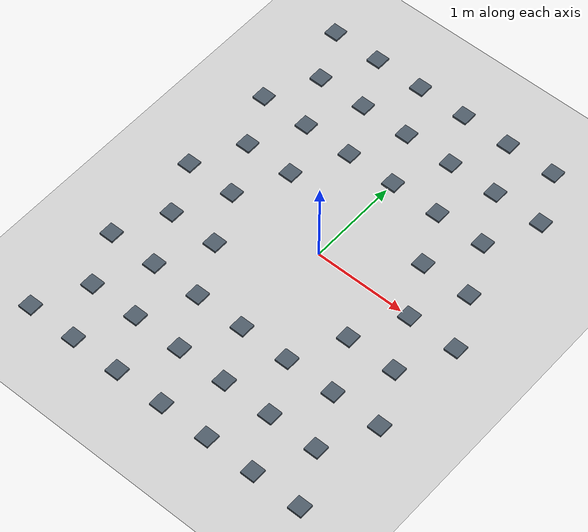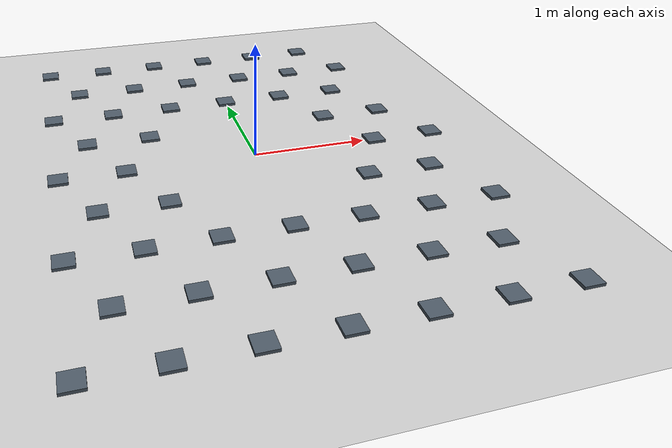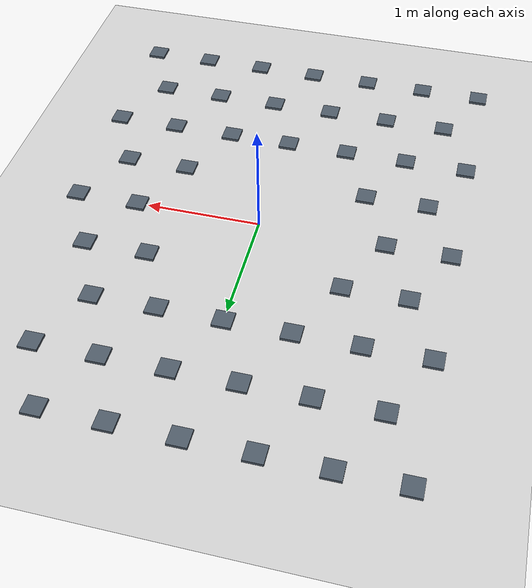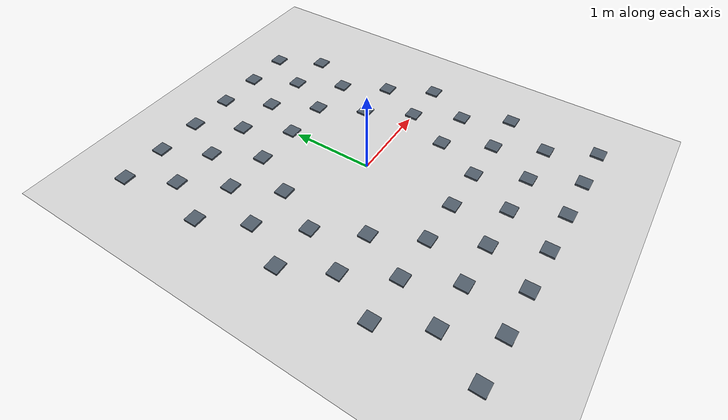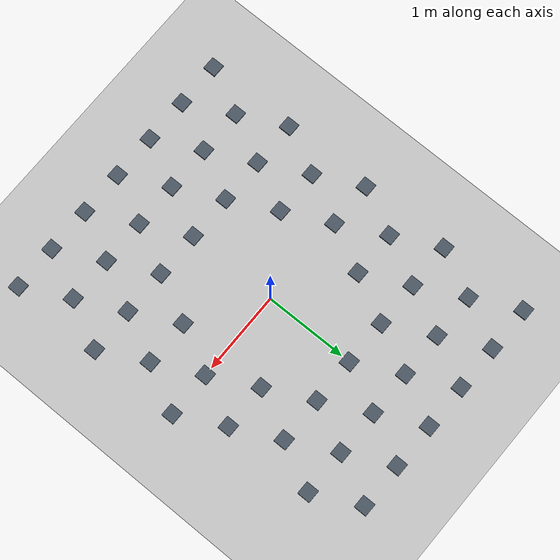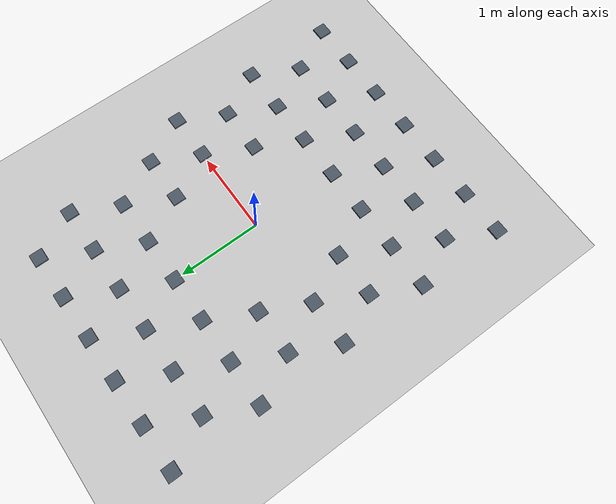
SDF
<sdf version="1.9">
 <world name="empty_ground">
  <model name="ground_plane">
   <static>true</static>
   <link name="link">
    <collision name="collision">
     <geometry><plane><normal>0 0 1</normal><size>100 100</size></plane></geometry>
     <surface>
      <friction>
       <ode><mu>1.5</mu><mu2>1.5</mu2></ode>
       <torsional><coefficient>0.0</coefficient></torsional>
      </friction>
     </surface>
    </collision>
    <visual name="visual">
     <geometry><plane><normal>0 0 1</normal><size>100 100</size></plane></geometry>
     <material><ambient>0.8 0.8 0.8 1</ambient><diffuse>0.8 0.8 0.8 1</diffuse></material>
    </visual>
   </link>
  </model>
  <model name="bump_1">
   <static>true</static>
   <pose>-1.650 -2.200 0.012 0 0 0</pose>
   <link name="link">
    <collision name="collision">
     <geometry><box><size>0.16 0.16 0.024</size></box></geometry>
     <surface>
      <friction>
       <ode><mu>1.5</mu><mu2>1.5</mu2></ode>
       <torsional><coefficient>0.0</coefficient></torsional>
      </friction>
     </surface>
    </collision>
    <visual name="visual">
     <geometry><box><size>0.16 0.16 0.024</size></box></geometry>
     <material><ambient>0.25 0.3 0.35 1</ambient><diffuse>0.30 0.35 0.4 1</diffuse></material>
    </visual>
   </link>
  </model>
  <model name="bump_2">
   <static>true</static>
   <pose>-1.380 -1.650 0.012 0 0 0</pose>
   <link name="link">
    <collision name="collision">
     <geometry><box><size>0.16 0.16 0.024</size></box></geometry>
     <surface>
      <friction>
       <ode><mu>1.5</mu><mu2>1.5</mu2></ode>
       <torsional><coefficient>0.0</coefficient></torsional>
      </friction>
     </surface>
    </collision>
    <visual name="visual">
     <geometry><box><size>0.16 0.16 0.024</size></box></geometry>
     <material><ambient>0.25 0.3 0.35 1</ambient><diffuse>0.30 0.35 0.4 1</diffuse></material>
    </visual>
   </link>
  </model>
  <model name="bump_3">
   <static>true</static>
   <pose>-1.650 -1.100 0.012 0 0 0</pose>
   <link name="link">
    <collision name="collision">
     <geometry><box><size>0.16 0.16 0.024</size></box></geometry>
     <surface>
      <friction>
       <ode><mu>1.5</mu><mu2>1.5</mu2></ode>
       <torsional><coefficient>0.0</coefficient></torsional>
      </friction>
     </surface>
    </collision>
    <visual name="visual">
     <geometry><box><size>0.16 0.16 0.024</size></box></geometry>
     <material><ambient>0.25 0.3 0.35 1</ambient><diffuse>0.30 0.35 0.4 1</diffuse></material>
    </visual>
   </link>
  </model>
  <model name="bump_4">
   <static>true</static>
   <pose>-1.380 -0.550 0.012 0 0 0</pose>
   <link name="link">
    <collision name="collision">
     <geometry><box><size>0.16 0.16 0.024</size></box></geometry>
     <surface>
      <friction>
       <ode><mu>1.5</mu><mu2>1.5</mu2></ode>
       <torsional><coefficient>0.0</coefficient></torsional>
      </friction>
     </surface>
    </collision>
    <visual name="visual">
     <geometry><box><size>0.16 0.16 0.024</size></box></geometry>
     <material><ambient>0.25 0.3 0.35 1</ambient><diffuse>0.30 0.35 0.4 1</diffuse></material>
    </visual>
   </link>
  </model>
  <model name="bump_5">
   <static>true</static>
   <pose>-1.650 0.000 0.012 0 0 0</pose>
   <link name="link">
    <collision name="collision">
     <geometry><box><size>0.16 0.16 0.024</size></box></geometry>
     <surface>
      <friction>
       <ode><mu>1.5</mu><mu2>1.5</mu2></ode>
       <torsional><coefficient>0.0</coefficient></torsional>
      </friction>
     </surface>
    </collision>
    <visual name="visual">
     <geometry><box><size>0.16 0.16 0.024</size></box></geometry>
     <material><ambient>0.25 0.3 0.35 1</ambient><diffuse>0.30 0.35 0.4 1</diffuse></material>
    </visual>
   </link>
  </model>
  <model name="bump_6">
   <static>true</static>
   <pose>-1.380 0.550 0.012 0 0 0</pose>
   <link name="link">
    <collision name="collision">
     <geometry><box><size>0.16 0.16 0.024</size></box></geometry>
     <surface>
      <friction>
       <ode><mu>1.5</mu><mu2>1.5</mu2></ode>
       <torsional><coefficient>0.0</coefficient></torsional>
      </friction>
     </surface>
    </collision>
    <visual name="visual">
     <geometry><box><size>0.16 0.16 0.024</size></box></geometry>
     <material><ambient>0.25 0.3 0.35 1</ambient><diffuse>0.30 0.35 0.4 1</diffuse></material>
    </visual>
   </link>
  </model>
  <model name="bump_7">
   <static>true</static>
   <pose>-1.650 1.100 0.012 0 0 0</pose>
   <link name="link">
    <collision name="collision">
     <geometry><box><size>0.16 0.16 0.024</size></box></geometry>
     <surface>
      <friction>
       <ode><mu>1.5</mu><mu2>1.5</mu2></ode>
       <torsional><coefficient>0.0</coefficient></torsional>
      </friction>
     </surface>
    </collision>
    <visual name="visual">
     <geometry><box><size>0.16 0.16 0.024</size></box></geometry>
     <material><ambient>0.25 0.3 0.35 1</ambient><diffuse>0.30 0.35 0.4 1</diffuse></material>
    </visual>
   </link>
  </model>
  <model name="bump_8">
   <static>true</static>
   <pose>-1.380 1.650 0.012 0 0 0</pose>
   <link name="link">
    <collision name="collision">
     <geometry><box><size>0.16 0.16 0.024</size></box></geometry>
     <surface>
      <friction>
       <ode><mu>1.5</mu><mu2>1.5</mu2></ode>
       <torsional><coefficient>0.0</coefficient></torsional>
      </friction>
     </surface>
    </collision>
    <visual name="visual">
     <geometry><box><size>0.16 0.16 0.024</size></box></geometry>
     <material><ambient>0.25 0.3 0.35 1</ambient><diffuse>0.30 0.35 0.4 1</diffuse></material>
    </visual>
   </link>
  </model>
  <model name="bump_9">
   <static>true</static>
   <pose>-1.650 2.200 0.012 0 0 0</pose>
   <link name="link">
    <collision name="collision">
     <geometry><box><size>0.16 0.16 0.024</size></box></geometry>
     <surface>
      <friction>
       <ode><mu>1.5</mu><mu2>1.5</mu2></ode>
       <torsional><coefficient>0.0</coefficient></torsional>
      </friction>
     </surface>
    </collision>
    <visual name="visual">
     <geometry><box><size>0.16 0.16 0.024</size></box></geometry>
     <material><ambient>0.25 0.3 0.35 1</ambient><diffuse>0.30 0.35 0.4 1</diffuse></material>
    </visual>
   </link>
  </model>
  <model name="bump_10">
   <static>true</static>
   <pose>-1.100 -2.200 0.012 0 0 0</pose>
   <link name="link">
    <collision name="collision">
     <geometry><box><size>0.16 0.16 0.024</size></box></geometry>
     <surface>
      <friction>
       <ode><mu>1.5</mu><mu2>1.5</mu2></ode>
       <torsional><coefficient>0.0</coefficient></torsional>
      </friction>
     </surface>
    </collision>
    <visual name="visual">
     <geometry><box><size>0.16 0.16 0.024</size></box></geometry>
     <material><ambient>0.25 0.3 0.35 1</ambient><diffuse>0.30 0.35 0.4 1</diffuse></material>
    </visual>
   </link>
  </model>
  <model name="bump_11">
   <static>true</static>
   <pose>-0.830 -1.650 0.012 0 0 0</pose>
   <link name="link">
    <collision name="collision">
     <geometry><box><size>0.16 0.16 0.024</size></box></geometry>
     <surface>
      <friction>
       <ode><mu>1.5</mu><mu2>1.5</mu2></ode>
       <torsional><coefficient>0.0</coefficient></torsional>
      </friction>
     </surface>
    </collision>
    <visual name="visual">
     <geometry><box><size>0.16 0.16 0.024</size></box></geometry>
     <material><ambient>0.25 0.3 0.35 1</ambient><diffuse>0.30 0.35 0.4 1</diffuse></material>
    </visual>
   </link>
  </model>
  <model name="bump_12">
   <static>true</static>
   <pose>-1.100 -1.100 0.012 0 0 0</pose>
   <link name="link">
    <collision name="collision">
     <geometry><box><size>0.16 0.16 0.024</size></box></geometry>
     <surface>
      <friction>
       <ode><mu>1.5</mu><mu2>1.5</mu2></ode>
       <torsional><coefficient>0.0</coefficient></torsional>
      </friction>
     </surface>
    </collision>
    <visual name="visual">
     <geometry><box><size>0.16 0.16 0.024</size></box></geometry>
     <material><ambient>0.25 0.3 0.35 1</ambient><diffuse>0.30 0.35 0.4 1</diffuse></material>
    </visual>
   </link>
  </model>
  <model name="bump_13">
   <static>true</static>
   <pose>-0.830 -0.550 0.012 0 0 0</pose>
   <link name="link">
    <collision name="collision">
     <geometry><box><size>0.16 0.16 0.024</size></box></geometry>
     <surface>
      <friction>
       <ode><mu>1.5</mu><mu2>1.5</mu2></ode>
       <torsional><coefficient>0.0</coefficient></torsional>
      </friction>
     </surface>
    </collision>
    <visual name="visual">
     <geometry><box><size>0.16 0.16 0.024</size></box></geometry>
     <material><ambient>0.25 0.3 0.35 1</ambient><diffuse>0.30 0.35 0.4 1</diffuse></material>
    </visual>
   </link>
  </model>
  <model name="bump_14">
   <static>true</static>
   <pose>-1.100 0.000 0.012 0 0 0</pose>
   <link name="link">
    <collision name="collision">
     <geometry><box><size>0.16 0.16 0.024</size></box></geometry>
     <surface>
      <friction>
       <ode><mu>1.5</mu><mu2>1.5</mu2></ode>
       <torsional><coefficient>0.0</coefficient></torsional>
      </friction>
     </surface>
    </collision>
    <visual name="visual">
     <geometry><box><size>0.16 0.16 0.024</size></box></geometry>
     <material><ambient>0.25 0.3 0.35 1</ambient><diffuse>0.30 0.35 0.4 1</diffuse></material>
    </visual>
   </link>
  </model>
  <model name="bump_15">
   <static>true</static>
   <pose>-0.830 0.550 0.012 0 0 0</pose>
   <link name="link">
    <collision name="collision">
     <geometry><box><size>0.16 0.16 0.024</size></box></geometry>
     <surface>
      <friction>
       <ode><mu>1.5</mu><mu2>1.5</mu2></ode>
       <torsional><coefficient>0.0</coefficient></torsional>
      </friction>
     </surface>
    </collision>
    <visual name="visual">
     <geometry><box><size>0.16 0.16 0.024</size></box></geometry>
     <material><ambient>0.25 0.3 0.35 1</ambient><diffuse>0.30 0.35 0.4 1</diffuse></material>
    </visual>
   </link>
  </model>
  <model name="bump_16">
   <static>true</static>
   <pose>-1.100 1.100 0.012 0 0 0</pose>
   <link name="link">
    <collision name="collision">
     <geometry><box><size>0.16 0.16 0.024</size></box></geometry>
     <surface>
      <friction>
       <ode><mu>1.5</mu><mu2>1.5</mu2></ode>
       <torsional><coefficient>0.0</coefficient></torsional>
      </friction>
     </surface>
    </collision>
    <visual name="visual">
     <geometry><box><size>0.16 0.16 0.024</size></box></geometry>
     <material><ambient>0.25 0.3 0.35 1</ambient><diffuse>0.30 0.35 0.4 1</diffuse></material>
    </visual>
   </link>
  </model>
  <model name="bump_17">
   <static>true</static>
   <pose>-0.830 1.650 0.012 0 0 0</pose>
   <link name="link">
    <collision name="collision">
     <geometry><box><size>0.16 0.16 0.024</size></box></geometry>
     <surface>
      <friction>
       <ode><mu>1.5</mu><mu2>1.5</mu2></ode>
       <torsional><coefficient>0.0</coefficient></torsional>
      </friction>
     </surface>
    </collision>
    <visual name="visual">
     <geometry><box><size>0.16 0.16 0.024</size></box></geometry>
     <material><ambient>0.25 0.3 0.35 1</ambient><diffuse>0.30 0.35 0.4 1</diffuse></material>
    </visual>
   </link>
  </model>
  <model name="bump_18">
   <static>true</static>
   <pose>-1.100 2.200 0.012 0 0 0</pose>
   <link name="link">
    <collision name="collision">
     <geometry><box><size>0.16 0.16 0.024</size></box></geometry>
     <surface>
      <friction>
       <ode><mu>1.5</mu><mu2>1.5</mu2></ode>
       <torsional><coefficient>0.0</coefficient></torsional>
      </friction>
     </surface>
    </collision>
    <visual name="visual">
     <geometry><box><size>0.16 0.16 0.024</size></box></geometry>
     <material><ambient>0.25 0.3 0.35 1</ambient><diffuse>0.30 0.35 0.4 1</diffuse></material>
    </visual>
   </link>
  </model>
  <model name="bump_19">
   <static>true</static>
   <pose>-0.550 -2.200 0.012 0 0 0</pose>
   <link name="link">
    <collision name="collision">
     <geometry><box><size>0.16 0.16 0.024</size></box></geometry>
     <surface>
      <friction>
       <ode><mu>1.5</mu><mu2>1.5</mu2></ode>
       <torsional><coefficient>0.0</coefficient></torsional>
      </friction>
     </surface>
    </collision>
    <visual name="visual">
     <geometry><box><size>0.16 0.16 0.024</size></box></geometry>
     <material><ambient>0.25 0.3 0.35 1</ambient><diffuse>0.30 0.35 0.4 1</diffuse></material>
    </visual>
   </link>
  </model>
  <model name="bump_20">
   <static>true</static>
   <pose>-0.280 -1.650 0.012 0 0 0</pose>
   <link name="link">
    <collision name="collision">
     <geometry><box><size>0.16 0.16 0.024</size></box></geometry>
     <surface>
      <friction>
       <ode><mu>1.5</mu><mu2>1.5</mu2></ode>
       <torsional><coefficient>0.0</coefficient></torsional>
      </friction>
     </surface>
    </collision>
    <visual name="visual">
     <geometry><box><size>0.16 0.16 0.024</size></box></geometry>
     <material><ambient>0.25 0.3 0.35 1</ambient><diffuse>0.30 0.35 0.4 1</diffuse></material>
    </visual>
   </link>
  </model>
  <model name="bump_21">
   <static>true</static>
   <pose>-0.550 -1.100 0.012 0 0 0</pose>
   <link name="link">
    <collision name="collision">
     <geometry><box><size>0.16 0.16 0.024</size></box></geometry>
     <surface>
      <friction>
       <ode><mu>1.5</mu><mu2>1.5</mu2></ode>
       <torsional><coefficient>0.0</coefficient></torsional>
      </friction>
     </surface>
    </collision>
    <visual name="visual">
     <geometry><box><size>0.16 0.16 0.024</size></box></geometry>
     <material><ambient>0.25 0.3 0.35 1</ambient><diffuse>0.30 0.35 0.4 1</diffuse></material>
    </visual>
   </link>
  </model>
  <model name="bump_22">
   <static>true</static>
   <pose>-0.550 1.100 0.012 0 0 0</pose>
   <link name="link">
    <collision name="collision">
     <geometry><box><size>0.16 0.16 0.024</size></box></geometry>
     <surface>
      <friction>
       <ode><mu>1.5</mu><mu2>1.5</mu2></ode>
       <torsional><coefficient>0.0</coefficient></torsional>
      </friction>
     </surface>
    </collision>
    <visual name="visual">
     <geometry><box><size>0.16 0.16 0.024</size></box></geometry>
     <material><ambient>0.25 0.3 0.35 1</ambient><diffuse>0.30 0.35 0.4 1</diffuse></material>
    </visual>
   </link>
  </model>
  <model name="bump_23">
   <static>true</static>
   <pose>-0.280 1.650 0.012 0 0 0</pose>
   <link name="link">
    <collision name="collision">
     <geometry><box><size>0.16 0.16 0.024</size></box></geometry>
     <surface>
      <friction>
       <ode><mu>1.5</mu><mu2>1.5</mu2></ode>
       <torsional><coefficient>0.0</coefficient></torsional>
      </friction>
     </surface>
    </collision>
    <visual name="visual">
     <geometry><box><size>0.16 0.16 0.024</size></box></geometry>
     <material><ambient>0.25 0.3 0.35 1</ambient><diffuse>0.30 0.35 0.4 1</diffuse></material>
    </visual>
   </link>
  </model>
  <model name="bump_24">
   <static>true</static>
   <pose>-0.550 2.200 0.012 0 0 0</pose>
   <link name="link">
    <collision name="collision">
     <geometry><box><size>0.16 0.16 0.024</size></box></geometry>
     <surface>
      <friction>
       <ode><mu>1.5</mu><mu2>1.5</mu2></ode>
       <torsional><coefficient>0.0</coefficient></torsional>
      </friction>
     </surface>
    </collision>
    <visual name="visual">
     <geometry><box><size>0.16 0.16 0.024</size></box></geometry>
     <material><ambient>0.25 0.3 0.35 1</ambient><diffuse>0.30 0.35 0.4 1</diffuse></material>
    </visual>
   </link>
  </model>
  <model name="bump_25">
   <static>true</static>
   <pose>0.000 -2.200 0.012 0 0 0</pose>
   <link name="link">
    <collision name="collision">
     <geometry><box><size>0.16 0.16 0.024</size></box></geometry>
     <surface>
      <friction>
       <ode><mu>1.5</mu><mu2>1.5</mu2></ode>
       <torsional><coefficient>0.0</coefficient></torsional>
      </friction>
     </surface>
    </collision>
    <visual name="visual">
     <geometry><box><size>0.16 0.16 0.024</size></box></geometry>
     <material><ambient>0.25 0.3 0.35 1</ambient><diffuse>0.30 0.35 0.4 1</diffuse></material>
    </visual>
   </link>
  </model>
  <model name="bump_26">
   <static>true</static>
   <pose>0.270 -1.650 0.012 0 0 0</pose>
   <link name="link">
    <collision name="collision">
     <geometry><box><size>0.16 0.16 0.024</size></box></geometry>
     <surface>
      <friction>
       <ode><mu>1.5</mu><mu2>1.5</mu2></ode>
       <torsional><coefficient>0.0</coefficient></torsional>
      </friction>
     </surface>
    </collision>
    <visual name="visual">
     <geometry><box><size>0.16 0.16 0.024</size></box></geometry>
     <material><ambient>0.25 0.3 0.35 1</ambient><diffuse>0.30 0.35 0.4 1</diffuse></material>
    </visual>
   </link>
  </model>
  <model name="bump_27">
   <static>true</static>
   <pose>0.000 -1.100 0.012 0 0 0</pose>
   <link name="link">
    <collision name="collision">
     <geometry><box><size>0.16 0.16 0.024</size></box></geometry>
     <surface>
      <friction>
       <ode><mu>1.5</mu><mu2>1.5</mu2></ode>
       <torsional><coefficient>0.0</coefficient></torsional>
      </friction>
     </surface>
    </collision>
    <visual name="visual">
     <geometry><box><size>0.16 0.16 0.024</size></box></geometry>
     <material><ambient>0.25 0.3 0.35 1</ambient><diffuse>0.30 0.35 0.4 1</diffuse></material>
    </visual>
   </link>
  </model>
  <model name="bump_28">
   <static>true</static>
   <pose>0.000 1.100 0.012 0 0 0</pose>
   <link name="link">
    <collision name="collision">
     <geometry><box><size>0.16 0.16 0.024</size></box></geometry>
     <surface>
      <friction>
       <ode><mu>1.5</mu><mu2>1.5</mu2></ode>
       <torsional><coefficient>0.0</coefficient></torsional>
      </friction>
     </surface>
    </collision>
    <visual name="visual">
     <geometry><box><size>0.16 0.16 0.024</size></box></geometry>
     <material><ambient>0.25 0.3 0.35 1</ambient><diffuse>0.30 0.35 0.4 1</diffuse></material>
    </visual>
   </link>
  </model>
  <model name="bump_29">
   <static>true</static>
   <pose>0.270 1.650 0.012 0 0 0</pose>
   <link name="link">
    <collision name="collision">
     <geometry><box><size>0.16 0.16 0.024</size></box></geometry>
     <surface>
      <friction>
       <ode><mu>1.5</mu><mu2>1.5</mu2></ode>
       <torsional><coefficient>0.0</coefficient></torsional>
      </friction>
     </surface>
    </collision>
    <visual name="visual">
     <geometry><box><size>0.16 0.16 0.024</size></box></geometry>
     <material><ambient>0.25 0.3 0.35 1</ambient><diffuse>0.30 0.35 0.4 1</diffuse></material>
    </visual>
   </link>
  </model>
  <model name="bump_30">
   <static>true</static>
   <pose>0.000 2.200 0.012 0 0 0</pose>
   <link name="link">
    <collision name="collision">
     <geometry><box><size>0.16 0.16 0.024</size></box></geometry>
     <surface>
      <friction>
       <ode><mu>1.5</mu><mu2>1.5</mu2></ode>
       <torsional><coefficient>0.0</coefficient></torsional>
      </friction>
     </surface>
    </collision>
    <visual name="visual">
     <geometry><box><size>0.16 0.16 0.024</size></box></geometry>
     <material><ambient>0.25 0.3 0.35 1</ambient><diffuse>0.30 0.35 0.4 1</diffuse></material>
    </visual>
   </link>
  </model>
  <model name="bump_31">
   <static>true</static>
   <pose>0.550 -2.200 0.012 0 0 0</pose>
   <link name="link">
    <collision name="collision">
     <geometry><box><size>0.16 0.16 0.024</size></box></geometry>
     <surface>
      <friction>
       <ode><mu>1.5</mu><mu2>1.5</mu2></ode>
       <torsional><coefficient>0.0</coefficient></torsional>
      </friction>
     </surface>
    </collision>
    <visual name="visual">
     <geometry><box><size>0.16 0.16 0.024</size></box></geometry>
     <material><ambient>0.25 0.3 0.35 1</ambient><diffuse>0.30 0.35 0.4 1</diffuse></material>
    </visual>
   </link>
  </model>
  <model name="bump_32">
   <static>true</static>
   <pose>0.820 -1.650 0.012 0 0 0</pose>
   <link name="link">
    <collision name="collision">
     <geometry><box><size>0.16 0.16 0.024</size></box></geometry>
     <surface>
      <friction>
       <ode><mu>1.5</mu><mu2>1.5</mu2></ode>
       <torsional><coefficient>0.0</coefficient></torsional>
      </friction>
     </surface>
    </collision>
    <visual name="visual">
     <geometry><box><size>0.16 0.16 0.024</size></box></geometry>
     <material><ambient>0.25 0.3 0.35 1</ambient><diffuse>0.30 0.35 0.4 1</diffuse></material>
    </visual>
   </link>
  </model>
  <model name="bump_33">
   <static>true</static>
   <pose>0.550 -1.100 0.012 0 0 0</pose>
   <link name="link">
    <collision name="collision">
     <geometry><box><size>0.16 0.16 0.024</size></box></geometry>
     <surface>
      <friction>
       <ode><mu>1.5</mu><mu2>1.5</mu2></ode>
       <torsional><coefficient>0.0</coefficient></torsional>
      </friction>
     </surface>
    </collision>
    <visual name="visual">
     <geometry><box><size>0.16 0.16 0.024</size></box></geometry>
     <material><ambient>0.25 0.3 0.35 1</ambient><diffuse>0.30 0.35 0.4 1</diffuse></material>
    </visual>
   </link>
  </model>
  <model name="bump_34">
   <static>true</static>
   <pose>0.820 -0.550 0.012 0 0 0</pose>
   <link name="link">
    <collision name="collision">
     <geometry><box><size>0.16 0.16 0.024</size></box></geometry>
     <surface>
      <friction>
       <ode><mu>1.5</mu><mu2>1.5</mu2></ode>
       <torsional><coefficient>0.0</coefficient></torsional>
      </friction>
     </surface>
    </collision>
    <visual name="visual">
     <geometry><box><size>0.16 0.16 0.024</size></box></geometry>
     <material><ambient>0.25 0.3 0.35 1</ambient><diffuse>0.30 0.35 0.4 1</diffuse></material>
    </visual>
   </link>
  </model>
  <model name="bump_35">
   <static>true</static>
   <pose>0.820 0.550 0.012 0 0 0</pose>
   <link name="link">
    <collision name="collision">
     <geometry><box><size>0.16 0.16 0.024</size></box></geometry>
     <surface>
      <friction>
       <ode><mu>1.5</mu><mu2>1.5</mu2></ode>
       <torsional><coefficient>0.0</coefficient></torsional>
      </friction>
     </surface>
    </collision>
    <visual name="visual">
     <geometry><box><size>0.16 0.16 0.024</size></box></geometry>
     <material><ambient>0.25 0.3 0.35 1</ambient><diffuse>0.30 0.35 0.4 1</diffuse></material>
    </visual>
   </link>
  </model>
  <model name="bump_36">
   <static>true</static>
   <pose>0.550 1.100 0.012 0 0 0</pose>
   <link name="link">
    <collision name="collision">
     <geometry><box><size>0.16 0.16 0.024</size></box></geometry>
     <surface>
      <friction>
       <ode><mu>1.5</mu><mu2>1.5</mu2></ode>
       <torsional><coefficient>0.0</coefficient></torsional>
      </friction>
     </surface>
    </collision>
    <visual name="visual">
     <geometry><box><size>0.16 0.16 0.024</size></box></geometry>
     <material><ambient>0.25 0.3 0.35 1</ambient><diffuse>0.30 0.35 0.4 1</diffuse></material>
    </visual>
   </link>
  </model>
  <model name="bump_37">
   <static>true</static>
   <pose>0.820 1.650 0.012 0 0 0</pose>
   <link name="link">
    <collision name="collision">
     <geometry><box><size>0.16 0.16 0.024</size></box></geometry>
     <surface>
      <friction>
       <ode><mu>1.5</mu><mu2>1.5</mu2></ode>
       <torsional><coefficient>0.0</coefficient></torsional>
      </friction>
     </surface>
    </collision>
    <visual name="visual">
     <geometry><box><size>0.16 0.16 0.024</size></box></geometry>
     <material><ambient>0.25 0.3 0.35 1</ambient><diffuse>0.30 0.35 0.4 1</diffuse></material>
    </visual>
   </link>
  </model>
  <model name="bump_38">
   <static>true</static>
   <pose>0.550 2.200 0.012 0 0 0</pose>
   <link name="link">
    <collision name="collision">
     <geometry><box><size>0.16 0.16 0.024</size></box></geometry>
     <surface>
      <friction>
       <ode><mu>1.5</mu><mu2>1.5</mu2></ode>
       <torsional><coefficient>0.0</coefficient></torsional>
      </friction>
     </surface>
    </collision>
    <visual name="visual">
     <geometry><box><size>0.16 0.16 0.024</size></box></geometry>
     <material><ambient>0.25 0.3 0.35 1</ambient><diffuse>0.30 0.35 0.4 1</diffuse></material>
    </visual>
   </link>
  </model>
  <model name="bump_39">
   <static>true</static>
   <pose>1.100 -2.200 0.012 0 0 0</pose>
   <link name="link">
    <collision name="collision">
     <geometry><box><size>0.16 0.16 0.024</size></box></geometry>
     <surface>
      <friction>
       <ode><mu>1.5</mu><mu2>1.5</mu2></ode>
       <torsional><coefficient>0.0</coefficient></torsional>
      </friction>
     </surface>
    </collision>
    <visual name="visual">
     <geometry><box><size>0.16 0.16 0.024</size></box></geometry>
     <material><ambient>0.25 0.3 0.35 1</ambient><diffuse>0.30 0.35 0.4 1</diffuse></material>
    </visual>
   </link>
  </model>
  <model name="bump_40">
   <static>true</static>
   <pose>1.370 -1.650 0.012 0 0 0</pose>
   <link name="link">
    <collision name="collision">
     <geometry><box><size>0.16 0.16 0.024</size></box></geometry>
     <surface>
      <friction>
       <ode><mu>1.5</mu><mu2>1.5</mu2></ode>
       <torsional><coefficient>0.0</coefficient></torsional>
      </friction>
     </surface>
    </collision>
    <visual name="visual">
     <geometry><box><size>0.16 0.16 0.024</size></box></geometry>
     <material><ambient>0.25 0.3 0.35 1</ambient><diffuse>0.30 0.35 0.4 1</diffuse></material>
    </visual>
   </link>
  </model>
  <model name="bump_41">
   <static>true</static>
   <pose>1.100 -1.100 0.012 0 0 0</pose>
   <link name="link">
    <collision name="collision">
     <geometry><box><size>0.16 0.16 0.024</size></box></geometry>
     <surface>
      <friction>
       <ode><mu>1.5</mu><mu2>1.5</mu2></ode>
       <torsional><coefficient>0.0</coefficient></torsional>
      </friction>
     </surface>
    </collision>
    <visual name="visual">
     <geometry><box><size>0.16 0.16 0.024</size></box></geometry>
     <material><ambient>0.25 0.3 0.35 1</ambient><diffuse>0.30 0.35 0.4 1</diffuse></material>
    </visual>
   </link>
  </model>
  <model name="bump_42">
   <static>true</static>
   <pose>1.370 -0.550 0.012 0 0 0</pose>
   <link name="link">
    <collision name="collision">
     <geometry><box><size>0.16 0.16 0.024</size></box></geometry>
     <surface>
      <friction>
       <ode><mu>1.5</mu><mu2>1.5</mu2></ode>
       <torsional><coefficient>0.0</coefficient></torsional>
      </friction>
     </surface>
    </collision>
    <visual name="visual">
     <geometry><box><size>0.16 0.16 0.024</size></box></geometry>
     <material><ambient>0.25 0.3 0.35 1</ambient><diffuse>0.30 0.35 0.4 1</diffuse></material>
    </visual>
   </link>
  </model>
  <model name="bump_43">
   <static>true</static>
   <pose>1.100 0.000 0.012 0 0 0</pose>
   <link name="link">
    <collision name="collision">
     <geometry><box><size>0.16 0.16 0.024</size></box></geometry>
     <surface>
      <friction>
       <ode><mu>1.5</mu><mu2>1.5</mu2></ode>
       <torsional><coefficient>0.0</coefficient></torsional>
      </friction>
     </surface>
    </collision>
    <visual name="visual">
     <geometry><box><size>0.16 0.16 0.024</size></box></geometry>
     <material><ambient>0.25 0.3 0.35 1</ambient><diffuse>0.30 0.35 0.4 1</diffuse></material>
    </visual>
   </link>
  </model>
  <model name="bump_44">
   <static>true</static>
   <pose>1.370 0.550 0.012 0 0 0</pose>
   <link name="link">
    <collision name="collision">
     <geometry><box><size>0.16 0.16 0.024</size></box></geometry>
     <surface>
      <friction>
       <ode><mu>1.5</mu><mu2>1.5</mu2></ode>
       <torsional><coefficient>0.0</coefficient></torsional>
      </friction>
     </surface>
    </collision>
    <visual name="visual">
     <geometry><box><size>0.16 0.16 0.024</size></box></geometry>
     <material><ambient>0.25 0.3 0.35 1</ambient><diffuse>0.30 0.35 0.4 1</diffuse></material>
    </visual>
   </link>
  </model>
  <model name="bump_45">
   <static>true</static>
   <pose>1.100 1.100 0.012 0 0 0</pose>
   <link name="link">
    <collision name="collision">
     <geometry><box><size>0.16 0.16 0.024</size></box></geometry>
     <surface>
      <friction>
       <ode><mu>1.5</mu><mu2>1.5</mu2></ode>
       <torsional><coefficient>0.0</coefficient></torsional>
      </friction>
     </surface>
    </collision>
    <visual name="visual">
     <geometry><box><size>0.16 0.16 0.024</size></box></geometry>
     <material><ambient>0.25 0.3 0.35 1</ambient><diffuse>0.30 0.35 0.4 1</diffuse></material>
    </visual>
   </link>
  </model>
  <model name="bump_46">
   <static>true</static>
   <pose>1.370 1.650 0.012 0 0 0</pose>
   <link name="link">
    <collision name="collision">
     <geometry><box><size>0.16 0.16 0.024</size></box></geometry>
     <surface>
      <friction>
       <ode><mu>1.5</mu><mu2>1.5</mu2></ode>
       <torsional><coefficient>0.0</coefficient></torsional>
      </friction>
     </surface>
    </collision>
    <visual name="visual">
     <geometry><box><size>0.16 0.16 0.024</size></box></geometry>
     <material><ambient>0.25 0.3 0.35 1</ambient><diffuse>0.30 0.35 0.4 1</diffuse></material>
    </visual>
   </link>
  </model>
  <model name="bump_47">
   <static>true</static>
   <pose>1.100 2.200 0.012 0 0 0</pose>
   <link name="link">
    <collision name="collision">
     <geometry><box><size>0.16 0.16 0.024</size></box></geometry>
     <surface>
      <friction>
       <ode><mu>1.5</mu><mu2>1.5</mu2></ode>
       <torsional><coefficient>0.0</coefficient></torsional>
      </friction>
     </surface>
    </collision>
    <visual name="visual">
     <geometry><box><size>0.16 0.16 0.024</size></box></geometry>
     <material><ambient>0.25 0.3 0.35 1</ambient><diffuse>0.30 0.35 0.4 1</diffuse></material>
    </visual>
   </link>
  </model>
  <model name="bump_48">
   <static>true</static>
   <pose>1.650 -2.200 0.012 0 0 0</pose>
   <link name="link">
    <collision name="collision">
     <geometry><box><size>0.16 0.16 0.024</size></box></geometry>
     <surface>
      <friction>
       <ode><mu>1.5</mu><mu2>1.5</mu2></ode>
       <torsional><coefficient>0.0</coefficient></torsional>
      </friction>
     </surface>
    </collision>
    <visual name="visual">
     <geometry><box><size>0.16 0.16 0.024</size></box></geometry>
     <material><ambient>0.25 0.3 0.35 1</ambient><diffuse>0.30 0.35 0.4 1</diffuse></material>
    </visual>
   </link>
  </model>
  <model name="bump_50">
   <static>true</static>
   <pose>1.650 -1.100 0.012 0 0 0</pose>
   <link name="link">
    <collision name="collision">
     <geometry><box><size>0.16 0.16 0.024</size></box></geometry>
     <surface>
      <friction>
       <ode><mu>1.5</mu><mu2>1.5</mu2></ode>
       <torsional><coefficient>0.0</coefficient></torsional>
      </friction>
     </surface>
    </collision>
    <visual name="visual">
     <geometry><box><size>0.16 0.16 0.024</size></box></geometry>
     <material><ambient>0.25 0.3 0.35 1</ambient><diffuse>0.30 0.35 0.4 1</diffuse></material>
    </visual>
   </link>
  </model>
  <model name="bump_52">
   <static>true</static>
   <pose>1.650 0.000 0.012 0 0 0</pose>
   <link name="link">
    <collision name="collision">
     <geometry><box><size>0.16 0.16 0.024</size></box></geometry>
     <surface>
      <friction>
       <ode><mu>1.5</mu><mu2>1.5</mu2></ode>
       <torsional><coefficient>0.0</coefficient></torsional>
      </friction>
     </surface>
    </collision>
    <visual name="visual">
     <geometry><box><size>0.16 0.16 0.024</size></box></geometry>
     <material><ambient>0.25 0.3 0.35 1</ambient><diffuse>0.30 0.35 0.4 1</diffuse></material>
    </visual>
   </link>
  </model>
 </world>
</sdf>
